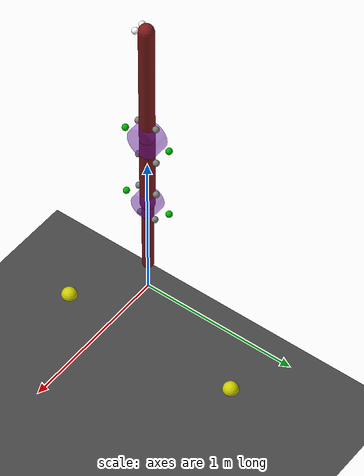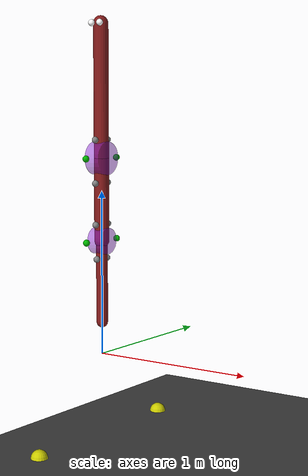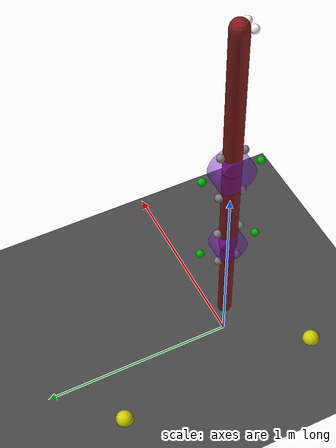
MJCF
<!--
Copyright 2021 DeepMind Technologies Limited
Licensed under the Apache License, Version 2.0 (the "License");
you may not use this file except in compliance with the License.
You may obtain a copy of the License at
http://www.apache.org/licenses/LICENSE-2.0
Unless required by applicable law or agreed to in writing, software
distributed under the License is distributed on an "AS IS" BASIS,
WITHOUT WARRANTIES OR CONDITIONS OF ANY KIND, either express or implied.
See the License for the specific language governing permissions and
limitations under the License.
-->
<mujoco model="2-link 6-muscle arm">
	<compiler inertiafromgeom="true"/>
    <option timestep="0.002" integrator="RK4" gravity="0 0 -9.81"/>

    <size njmax="100" nconmax="50" nstack="1000" nuserdata="20" nuser_actuator="4"/>

    <visual>
        <rgba haze=".3 .3 .3 1"/>
    </visual>

    <default>
        <muscle ctrllimited="true" ctrlrange="0 1" scale="0"/>
        <joint damping="1" armature="1" type="hinge" axis="1 0 0"/>
        <geom  friction="0.9" conaffinity="1" condim="1" contype="1" margin="0.001" solimp=".8 .8 .01" solref=".02 1"/>
    </default>

    <asset>
        <texture type="skybox" builtin="gradient" rgb1="0.6 0.6 0.6" rgb2="0 0 0" width="512" height="512"/>

        <texture name="texplane" type="2d" builtin="checker" rgb1=".25 .25 .25" rgb2=".3 .3 .3" width="512" height="512" mark="cross" markrgb=".8 .8 .8"/>

        <material name="matplane" reflectance="0.3" texture="texplane" texrepeat="1 1" texuniform="true"/>
    </asset>

    <worldbody>
    <geom name="floor" pos="0 0 -0.5" size="0 0 1" type="plane" material="matplane" conaffinity="1" condim="3"/>
	<site name="limit1" pos="0.0 0.6 -0.5" size="0.05" rgba="0.8 0.8 0.0 1"/>
	<site name="limit2" pos="0.0 -0.6 -0.5" size="0.05" rgba="0.8 0.8 0.0 1"/>
        <light directional="true" diffuse=".8 .8 .8" specular=".2 .2 .2" pos="0 0 5" dir="0 0 -1"/>
	<body name="pelvis" pos="0 0 2.0">
        <camera name="track" mode="trackcom" pos="1 -6 0.0" xyaxes="1 0 0 0 0 1"/>
	    <site name="eye1" pos="-0.03 -0.05 0.00" size="0.02" rgba="1 1 1 1"/>
	    <site name="eye2" pos="0.03 -0.05 0.00" size="0.02" rgba="1 1 1 1"/>
	    <geom name="torso" type="capsule" size="0.045" fromto="0 0 0  0 0 -0.8" rgba=".5 .1 .1 1"/>
	    <joint name="torso_z" type="slide" axis="0 0 1" armature="0" damping="0" stiffness="0"/>
	    <joint name="torso_y" type="slide" axis="0 1 0" armature="0" damping="0" stiffness="0"/>
        <joint name="torso_tilt" type="hinge" axis="1 0 0" armature="0" damping="0" stiffness="0" limited="false"/>
	    <site name="bifemlh_r-P1" pos="0.0 0.00 0.00" size="0.02"/>
	    <site name="s3" pos="0.0 0.06 -0.69" size="0.02"/>
	    <site name="s4" pos="0.0 -0.06 -0.69" size="0.02"/>
	    <site name="x2" pos="0.0 -0.15 -0.8" size="0.02" rgba="0 .7 0 1" group="1"/>
	    <site name="x3" pos="0.0 0.15 -0.8" size="0.02" rgba="0 .7 0 1" group="1"/>

		<body name="upperleg" pos="0 0 -0.8">
            <joint name="hip" limited="true" range="-120 120"/>
            <geom name="hip" zaxis="1 0 0" type="cylinder" pos="0 0 0.0" size=".1 .05" rgba=".5 .1 .8 .5" mass="0" group="1"/>
		    <geom name="upperleg" type="capsule" size="0.045" fromto="0 0 0  0 0 -0.5" rgba=".5 .1 .1 1"/>

		    <site name="s5" pos="0.0 0.06 -0.15" size="0.02"/>
		    <site name="s6" pos="0.0 -0.06 -0.15" size="0.02"/>
		    <site name="s7" pos="0.0 0.06 -0.4" size="0.02"/>
		    <site name="s8" pos="0.0 -0.06 -0.4" size="0.02"/>
		    <site name="x4" pos="0.0 -0.15 -0.5" size="0.02" rgba="0 .7 0 1" group="1"/>
		    <site name="x5" pos="0.0 0.15 -0.5" size="0.02" rgba="0 .7 0 1" group="1"/>

		    <body name="lowerleg" pos="0 0 -0.5">
                <joint name="knee" range="-10 120" limited="true"/>
                <geom name="knee" zaxis="1 0 0 " type="cylinder" pos="0 0 0" size=".08 .05" rgba=".5 .1 .8 .5" mass="0" group="1"/>
                <geom name="lowerleg" type="capsule" size="0.035" fromto="0 0 0  0.0 0 -0.5" rgba=".5 .1 .1 1"/>

                <site name="s9" pos="0.0 0.05 -0.11" size="0.02"/>
                <site name="s10" pos="0.0 -0.05 -0.11" size="0.02"/>
            </body>
		</body>
	</body>

</worldbody>
<actuator>
    <motor joint="hip" gear="500" ctrllimited="true" ctrlrange="-1 1"/>-->
    <motor joint="knee" gear="500" ctrllimited="true" ctrlrange="-1 1"/>-->
</actuator>
</mujoco>
